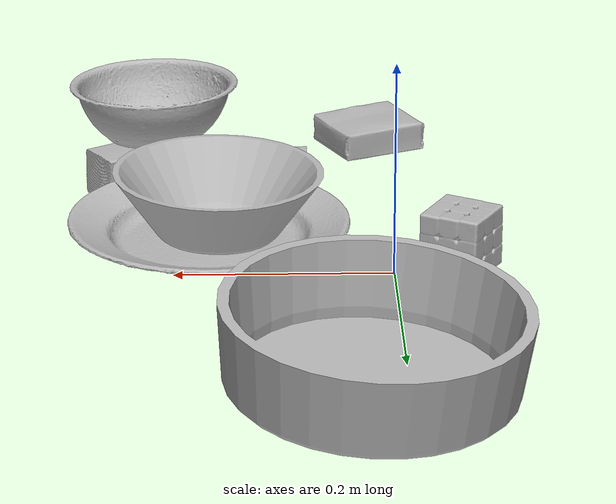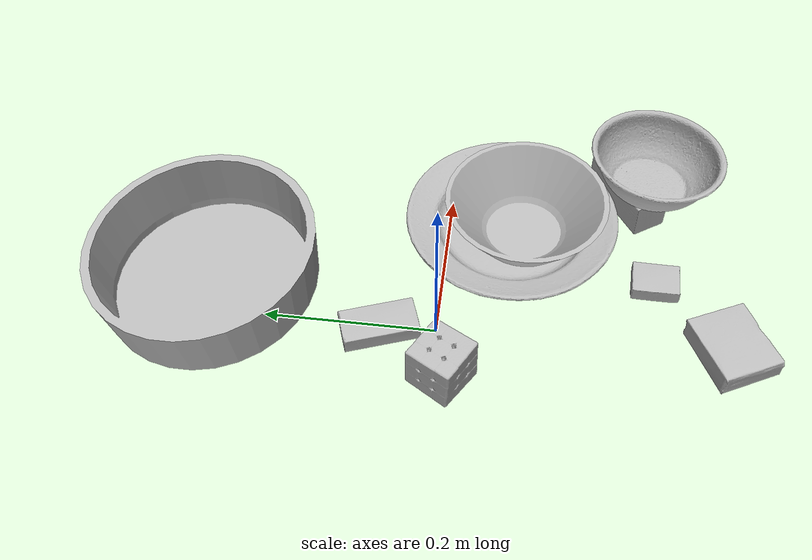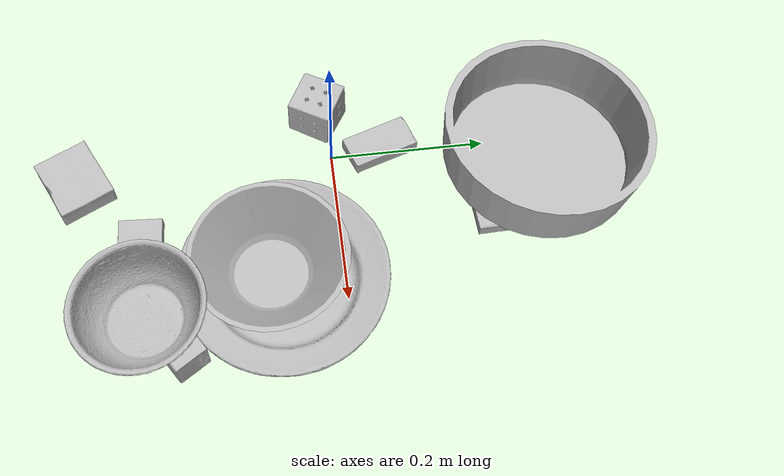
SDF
<sdf version="1.4">
  <world name="default">
    <light name="light1" type="point">
      <pose>0 0 1 0 0 0</pose>
      <diffuse>3 3 3 1</diffuse>
      <specular>3 3 3 1</specular>
    </light>
    <light name="light2" type="point">
      <pose>0 0.5 2 0 0 0</pose>
      <diffuse>1 1 1 1</diffuse>
      <specular>1 1 1 1</specular>
    </light>
    <light name="light3" type="point">
      <pose>0 0.5 2 0 0 0</pose>
      <diffuse>3 3 3 1</diffuse>
      <specular>3 3 3 1</specular>
    </light>
    <scene>
      <ambient>0.7 0.7 0.7</ambient>
    </scene>
    <model name="box1">
      <link name="link_box1">
        <collision name="default">
          <geometry>
            <mesh>
              <uri>model://gelatin_box/collision_meshes/collision.obj</uri>
              <scale>1.0 1.0 1.0</scale>
            </mesh>
          </geometry>
          <surface>
            <friction>
              <ode>
                <mu>0.5</mu>
                <mu2>0.5</mu2>
              </ode>
            </friction>
          <contact>
        <ode>
            <max_vel>0</max_vel>
            <min_depth>0.0001</min_depth>
            <kp>1e8</kp>
        </ode>
    </contact></surface>
        </collision>
        <visual name="default">
          <geometry>
            <mesh>
              <uri>model://gelatin_box/visual_meshes/visual.dae</uri>
              <scale>1.0 1.0 1.0</scale>
            </mesh>
          </geometry>
        </visual>
        <inertial>
          <mass>0.24885821342468262</mass>
          <pose>0.0004319618456065655 0.00011156872642459348 -0.0003640321083366871 -0.0010503721884538221 -0.004755817759936981 0.016440553883063976</pose>
          <inertia>
            <ixx>0.0001756736</ixx>
            <iyy>0.00012548274</iyy>
            <izz>0.00026741438</izz>
            <ixy>0</ixy>
            <ixz>0</ixz>
            <iyz>0</iyz>
          </inertia>
        </inertial>
      </link>
      <pose>0.00710175558924675 -0.3307363986968994 0.015168314799666405 0.005596874500156074 -0.007303926512994085 -1.1252683983965253</pose>
    </model>
    <model name="box11">
      <link name="link_box11">
        <collision name="default">
          <geometry>
            <mesh>
              <uri>model://pudding_box/collision_meshes/collision.obj</uri>
              <scale>0.5 0.5 0.5</scale>
            </mesh>
          </geometry>
          <surface>
            <friction>
              <ode>
                <mu>0.5</mu>
                <mu2>0.5</mu2>
              </ode>
            </friction>
          <contact>
        <ode>
            <max_vel>0</max_vel>
            <min_depth>0.0001</min_depth>
            <kp>1e8</kp>
        </ode>
    </contact></surface>
        </collision>
        <visual name="default">
          <geometry>
            <mesh>
              <uri>model://pudding_box/visual_meshes/visual.dae</uri>
              <scale>0.5 0.5 0.5</scale>
            </mesh>
          </geometry>
        </visual>
        <inertial>
          <mass>0.031047143042087555</mass>
          <pose>0.00024474109522998333 0.00040339428232982755 -0.0002594413817860186 0.005213102716306955 -0.006603798272123425 0.020079828883677098</pose>
          <inertia>
            <ixx>8.774299e-06</ixx>
            <iyy>5.903411e-06</iyy>
            <izz>1.2957546e-05</izz>
            <ixy>0</ixy>
            <ixz>0</ixz>
            <iyz>0</iyz>
          </inertia>
        </inertial>
      </link>
      <pose>0.09400394558906555 -0.249619722366333 0.00986290443688631 0.022348491518593916 -0.011391822863631952 3.090315351594262</pose>
    </model>
    <model name="box2">
      <link name="link_box2">
        <collision name="default">
          <geometry>
            <mesh>
              <uri>model://rubiks_cube/collision_meshes/collision.obj</uri>
              <scale>1.0 1.0 1.0</scale>
            </mesh>
          </geometry>
          <surface>
            <friction>
              <ode>
                <mu>0.5</mu>
                <mu2>0.5</mu2>
              </ode>
            </friction>
          <contact>
        <ode>
            <max_vel>0</max_vel>
            <min_depth>0.0001</min_depth>
            <kp>1e8</kp>
        </ode>
    </contact></surface>
        </collision>
        <visual name="default">
          <geometry>
            <mesh>
              <uri>model://rubiks_cube/visual_meshes/visual.dae</uri>
              <scale>1.0 1.0 1.0</scale>
            </mesh>
          </geometry>
        </visual>
        <inertial>
          <mass>0.2106715589761734</mass>
          <pose>2.6721041649580002e-05 5.2569666877388954e-05 -7.264316536748083e-06 -0.05467273700930805 -0.09814071961497198 -0.03445608496414611</pose>
          <inertia>
            <ixx>0.0001164102</ixx>
            <iyy>0.000115867326</iyy>
            <izz>0.00011737483</izz>
            <ixy>0</ixy>
            <ixz>0</ixz>
            <iyz>0</iyz>
          </inertia>
        </inertial>
      </link>
      <pose>-0.060949064791202545 -0.01262396015226841 0.028678974136710167 -3.7001732930041125e-06 -1.0887366702939942e-06 -0.519440738310207</pose>
    </model>
    <model name="box21">
      <link name="link_box21">
        <collision name="default">
          <geometry>
            <mesh>
              <uri>model://wood_block/collision_meshes/collision.obj</uri>
              <scale>0.5 0.5 0.5</scale>
            </mesh>
          </geometry>
          <surface>
            <friction>
              <ode>
                <mu>0.5</mu>
                <mu2>0.5</mu2>
              </ode>
            </friction>
          <contact>
        <ode>
            <max_vel>0</max_vel>
            <min_depth>0.0001</min_depth>
            <kp>1e8</kp>
        </ode>
    </contact></surface>
        </collision>
        <visual name="default">
          <geometry>
            <mesh>
              <uri>model://wood_block/visual_meshes/visual.dae</uri>
              <scale>0.5 0.5 0.5</scale>
            </mesh>
          </geometry>
        </visual>
        <inertial>
          <mass>0.146076962351799</mass>
          <pose>-2.9066577553749084e-06 -0.000285404734313488 0.00013204291462898254 -0.052208177866913126 -0.0051926955252411455 -0.006861378006552687</pose>
          <inertia>
            <ixx>4.8868267e-05</ixx>
            <iyy>0.00015437487</iyy>
            <izz>0.00015379742</izz>
            <ixy>0</ixy>
            <ixz>0</ixz>
            <iyz>0</iyz>
          </inertia>
        </inertial>
      </link>
      <pose>0.22946752607822418 -0.21725420653820038 0.022628985345363617 -0.005201035617918767 0.005721204648091049 0.5775292920929206</pose>
    </model>
    <model name="box3">
      <link name="link_box3">
        <collision name="default">
          <geometry>
            <mesh>
              <uri>model://cracker_box/collision_meshes/collision.obj</uri>
              <scale>0.25 0.25 0.25</scale>
            </mesh>
          </geometry>
          <surface>
            <friction>
              <ode>
                <mu>0.5</mu>
                <mu2>0.5</mu2>
              </ode>
            </friction>
          <contact>
        <ode>
            <max_vel>0</max_vel>
            <min_depth>0.0001</min_depth>
            <kp>1e8</kp>
        </ode>
    </contact></surface>
        </collision>
        <visual name="default">
          <geometry>
            <mesh>
              <uri>model://cracker_box/visual_meshes/visual.dae</uri>
              <scale>0.25 0.25 0.25</scale>
            </mesh>
          </geometry>
        </visual>
        <inertial>
          <mass>0.0398951955139637</mass>
          <pose>0.0002366032567806542 6.358561950037256e-05 -0.0004257383698131889 -0.00031620768741309833 -0.011106487737478729 0.0025467957005107203</pose>
          <inertia>
            <ixx>6.342223e-06</ixx>
            <iyy>1.0472255e-05</iyy>
            <izz>1.494487e-05</izz>
            <ixy>0</ixy>
            <ixz>0</ixz>
            <iyz>0</iyz>
          </inertia>
        </inertial>
      </link>
      <pose>0.10542717576026917 0.19170628488063812 0.009299445897340775 -0.026499849298784763 -0.006892814372802026 0.0452010803784303</pose>
    </model>
    <model name="box31">
      <link name="link_box31">
        <collision name="default">
          <geometry>
            <mesh>
              <uri>model://sugar_box/collision_meshes/collision.obj</uri>
              <scale>0.5 0.5 0.5</scale>
            </mesh>
          </geometry>
          <surface>
            <friction>
              <ode>
                <mu>0.5</mu>
                <mu2>0.5</mu2>
              </ode>
            </friction>
          <contact>
        <ode>
            <max_vel>0</max_vel>
            <min_depth>0.0001</min_depth>
            <kp>1e8</kp>
        </ode>
    </contact></surface>
        </collision>
        <visual name="default">
          <geometry>
            <mesh>
              <uri>model://sugar_box/visual_meshes/visual.dae</uri>
              <scale>0.5 0.5 0.5</scale>
            </mesh>
          </geometry>
        </visual>
        <inertial>
          <mass>0.051384337246418</mass>
          <pose>0.0005171863595023751 1.924554817378521e-05 -0.00018182402709499002 -0.00040462574757428057 0.0010506634050244472 0.0026153787892360275</pose>
          <inertia>
            <ixx>1.070332e-05</ixx>
            <iyy>3.4595334e-05</iyy>
            <izz>4.1414743e-05</izz>
            <ixy>0</ixy>
            <ixz>0</ixz>
            <iyz>0</iyz>
          </inertia>
        </inertial>
      </link>
      <pose>-0.006535961292684078 0.06445822864770889 0.011399309150874615 0.0007753170951936628 -0.023432648591790277 -1.241679051914383</pose>
    </model>
    <model name="plate1">
      <link name="link_plate1">
        <collision name="default">
          <geometry>
            <mesh>
              <uri>model://plate/collision_meshes/collision.obj</uri>
              <scale>1.0 1.0 1.0</scale>
            </mesh>
          </geometry>
          <surface>
            <friction>
              <ode>
                <mu>0.5</mu>
                <mu2>0.5</mu2>
              </ode>
            </friction>
          <contact>
        <ode>
            <max_vel>0</max_vel>
            <min_depth>0.0001</min_depth>
            <kp>1e8</kp>
        </ode>
    </contact></surface>
        </collision>
        <visual name="default">
          <geometry>
            <mesh>
              <uri>model://plate/visual_meshes/visual.dae</uri>
              <scale>1.0 1.0 1.0</scale>
            </mesh>
          </geometry>
        </visual>
        <inertial>
          <mass>0.18845537304878235</mass>
          <pose>-0.0006044640904292464 0.00027825849247165024 -0.0010561994276940823 0.0022188128524267426 -0.0032254640251278745 0.45260123674794867</pose>
          <inertia>
            <ixx>0.0008815983</ixx>
            <iyy>0.00087316614</iyy>
            <izz>0.001724274</izz>
            <ixy>0</ixy>
            <ixz>0</ixz>
            <iyz>0</iyz>
          </inertia>
        </inertial>
      </link>
      <pose>0.1671624630689621 -0.07520303130149841 0.013733195140957832 2.9324792767564467e-06 4.4579763825662555e-06 -1.1845762423914474</pose>
    </model>
    <model name="bowl1">
      <link name="link_bowl1">
        <collision name="default">
          <geometry>
            <mesh>
              <uri>model://bowl_a/collision_meshes/collision.obj</uri>
              <scale>1.0 1.0 1.0</scale>
            </mesh>
          </geometry>
          <surface>
            <friction>
              <ode>
                <mu>0.5</mu>
                <mu2>0.5</mu2>
              </ode>
            </friction>
          <contact>
        <ode>
            <max_vel>0</max_vel>
            <min_depth>0.0001</min_depth>
            <kp>1e8</kp>
        </ode>
    </contact></surface>
        </collision>
        <visual name="default">
          <geometry>
            <mesh>
              <uri>model://bowl_a/visual_meshes/visual.dae</uri>
              <scale>1.0 1.0 1.0</scale>
            </mesh>
          </geometry>
        </visual>
        <inertial>
          <mass>0.46761196851730347</mass>
          <pose>0.0002786737459246069 4.731199442176148e-05 -0.0013765295734629035 -0.0009805421566516771 -0.0010938164969012795 -0.19123134440759623</pose>
          <inertia>
            <ixx>0.0013313128</ixx>
            <iyy>0.0013394863</iyy>
            <izz>0.0023677913</izz>
            <ixy>0</ixy>
            <ixz>0</ixz>
            <iyz>0</iyz>
          </inertia>
        </inertial>
      </link>
      <pose>0.15874110162258148 -0.09114165604114532 0.03481746092438698 0.007330526923921796 -0.010448726612209283 -0.7760905958361253</pose>
    </model>
    <model name="plate2">
      <link name="link_plate2">
        <collision name="default">
          <geometry>
            <mesh>
              <uri>model://pan_tefal/collision_meshes/collision.obj</uri>
              <scale>1.0 1.0 1.0</scale>
            </mesh>
          </geometry>
          <surface>
            <friction>
              <ode>
                <mu>0.5</mu>
                <mu2>0.5</mu2>
              </ode>
            </friction>
          <contact>
        <ode>
            <max_vel>0</max_vel>
            <min_depth>0.0001</min_depth>
            <kp>1e8</kp>
        </ode>
    </contact></surface>
        </collision>
        <visual name="default">
          <geometry>
            <mesh>
              <uri>model://pan_tefal/visual_meshes/visual.dae</uri>
              <scale>1.0 1.0 1.0</scale>
            </mesh>
          </geometry>
        </visual>
        <inertial>
          <mass>0.7360396385192871</mass>
          <pose>-0.00018002057913690805 3.2791922421893105e-05 -0.00851493515074253 0.0008190284364517867 -0.0003301440136962699 -0.3318532577359739</pose>
          <inertia>
            <ixx>0.0050808466</ixx>
            <iyy>0.005113603</iyy>
            <izz>0.00935286</izz>
            <ixy>0</ixy>
            <ixz>0</ixz>
            <iyz>0</iyz>
          </inertia>
        </inertial>
      </link>
      <pose>0.03159055858850479 0.2691552937030792 0.04847339540719986 0.00770399977425046 -0.08739399798355212 -0.9844558941245714</pose>
    </model>
    <model name="bowl2">
      <link name="link_bowl2">
        <collision name="default">
          <geometry>
            <mesh>
              <uri>model://bowl/collision_meshes/collision.obj</uri>
              <scale>1.0 1.0 1.0</scale>
            </mesh>
          </geometry>
          <surface>
            <friction>
              <ode>
                <mu>0.5</mu>
                <mu2>0.5</mu2>
              </ode>
            </friction>
          <contact>
        <ode>
            <max_vel>0</max_vel>
            <min_depth>0.0001</min_depth>
            <kp>1e8</kp>
        </ode>
    </contact></surface>
        </collision>
        <visual name="default">
          <geometry>
            <mesh>
              <uri>model://bowl/visual_meshes/visual.dae</uri>
              <scale>1.0 1.0 1.0</scale>
            </mesh>
          </geometry>
        </visual>
        <inertial>
          <mass>0.11974068731069565</mass>
          <pose>0.00020445311383809894 -0.0010302052833139896 -0.0008042640401981771 -0.015764214972767723 0.014546668027170537 0.7140316235505751</pose>
          <inertia>
            <ixx>0.00027505384</ixx>
            <iyy>0.000268908</iyy>
            <izz>0.00046273507</izz>
            <ixy>0</ixy>
            <ixz>0</ixz>
            <iyz>0</iyz>
          </inertia>
        </inertial>
      </link>
      <pose>0.218840554356575 -0.2418505847454071 0.0727122500538826 0.02491921057217983 0.046033896832550485 -0.7633390697976745</pose>
    </model>
  <physics type="ode">
      <max_contacts>50</max_contacts>
      <ode>
        <solver>
          <type>quick</type>
          <iters>75</iters>
        </solver>
        <constraints>
          <contact_max_correcting_vel>0</contact_max_correcting_vel>
          <contact_surface_layer>0</contact_surface_layer>
        </constraints>
      </ode>
    </physics></world>
</sdf>
